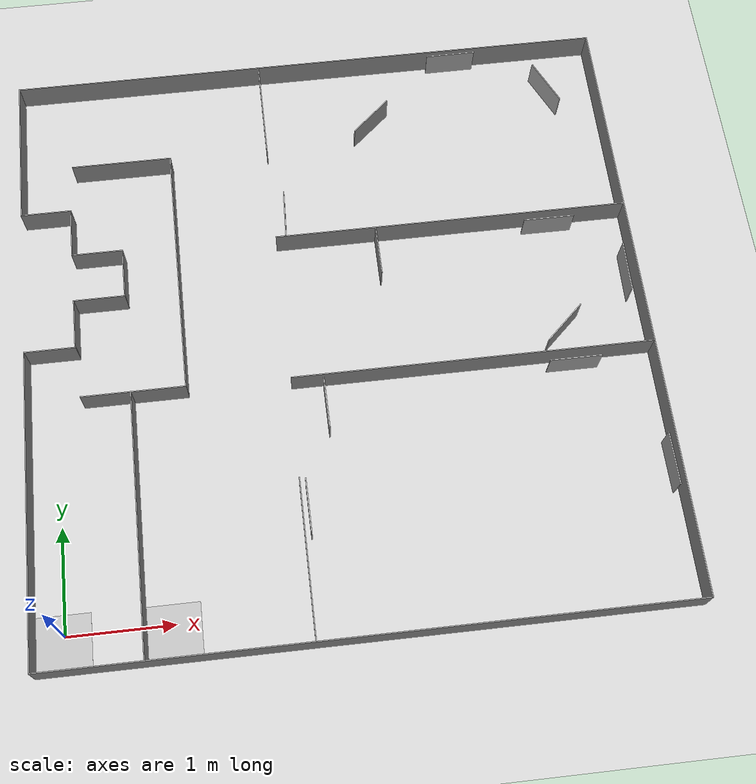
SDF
<sdf version="1.6">
 <world name="default">
  <light name="sun" type="directional">
   <pose>0 0 10 0 -0 0</pose>
   <diffuse>0.8 0.8 0.8 1</diffuse>
   <specular>0.2 0.2 0.2 1</specular>
   <attenuation>
    <range>1000</range>
    <constant>0.9</constant>
    <linear>0.01</linear>
    <quadratic>0.001</quadratic>
   </attenuation>
   <direction>-0.5 0.1 -0.9</direction>
  </light>
  <model name="ground_plane">
   <static>1</static>
   <link name="link">
    <collision name="collision">
     <geometry><plane><normal>0 0 1</normal><size>100 100</size></plane></geometry>
     <surface>
      <contact><collide_bitmask>65535</collide_bitmask></contact>
      <friction><ode><mu>100</mu><mu2>50</mu2></ode></friction>
     </surface>
    </collision>
    <visual name="visual">
     <cast_shadows>0</cast_shadows>
     <geometry><plane><normal>0 0 1</normal><size>100 100</size></plane></geometry>
     <material>
      <script><uri>file://media/materials/scripts/gazebo.material</uri><name>Gazebo/Grey</name></script>
     </material>
    </visual>
   </link>
  </model>
  <gravity>0 0 -9.8</gravity>
  <magnetic_field>6e-06 2.3e-05 -4.2e-05</magnetic_field>
  <atmosphere type="adiabatic"/>
  <physics name="default_physics" default="0" type="ode">
   <max_step_size>0.001</max_step_size>
   <real_time_factor>1</real_time_factor>
   <real_time_update_rate>1000</real_time_update_rate>
  </physics>
  <scene><ambient>0.4 0.4 0.4 1</ambient><background>0.7 0.7 0.7 1</background><shadows>1</shadows></scene>
  <audio><device>default</device></audio>
  <spherical_coordinates>
   <surface_model>EARTH_WGS84</surface_model>
   <latitude_deg>0</latitude_deg>
   <longitude_deg>0</longitude_deg>
   <elevation>0</elevation>
   <heading_deg>0</heading_deg>
  </spherical_coordinates>
  <model name="arena">
   <pose>2.72717 2.66142 0 0 -0 0</pose>
   <link name="Wall_1">
    <collision name="Wall_1_Collision">
     <geometry><box><size>6 0.01 0.3</size></box></geometry>
     <pose>0 0 0.15 0 -0 0</pose>
    </collision>
    <visual name="Wall_1_Visual">
     <pose>0 0 0.15 0 -0 0</pose>
     <geometry><box><size>6 0.01 0.3</size></box></geometry>
     <material>
      <script><uri>file://media/materials/scripts/gazebo.material</uri><name>Gazebo/Grey</name></script>
      <ambient>1 1 1 1</ambient>
     </material>
     <meta><layer>0</layer></meta>
    </visual>
    <pose>0.001988 -2.99751 0 0 -0 0</pose>
   </link>
   <link name="Wall_11">
    <collision name="Wall_11_Collision">
     <geometry><box><size>1.5 0.01 0.3</size></box></geometry>
     <pose>0 0 0.15 0 -0 0</pose>
    </collision>
    <visual name="Wall_11_Visual">
     <pose>0 0 0.15 0 -0 0</pose>
     <geometry><box><size>1.5 0.01 0.3</size></box></geometry>
     <material>
      <script><uri>file://media/materials/scripts/gazebo.material</uri><name>Gazebo/Grey</name></script>
      <ambient>1 1 1 1</ambient>
     </material>
     <meta><layer>0</layer></meta>
    </visual>
    <pose>-2.99841 2.25251 0 0 -0 1.5708</pose>
   </link>
   <link name="Wall_20">
    <collision name="Wall_20_Collision">
     <geometry><box><size>0.5 0.01 0.3</size></box></geometry>
     <pose>0 0 0.15 0 -0 0</pose>
    </collision>
    <visual name="Wall_20_Visual">
     <pose>0 0 0.15 0 -0 0</pose>
     <geometry><box><size>0.5 0.01 0.3</size></box></geometry>
     <material>
      <script><uri>file://media/materials/scripts/gazebo.material</uri><name>Gazebo/Grey</name></script>
      <ambient>1 1 1 1</ambient>
     </material>
     <meta><layer>0</layer></meta>
    </visual>
    <pose>-2.75425 1.50057 0 0 -0 0</pose>
   </link>
   <link name="Wall_22">
    <collision name="Wall_22_Collision">
     <geometry><box><size>0.5 0.01 0.3</size></box></geometry>
     <pose>0 0 0.15 0 -0 0</pose>
    </collision>
    <visual name="Wall_22_Visual">
     <pose>0 0 0.15 0 -0 0</pose>
     <geometry><box><size>0.5 0.01 0.3</size></box></geometry>
     <material>
      <script><uri>file://media/materials/scripts/gazebo.material</uri><name>Gazebo/Grey</name></script>
      <ambient>1 1 1 1</ambient>
     </material>
     <meta><layer>0</layer></meta>
    </visual>
    <pose>-2.50969 1.25495 0 0 -0 1.5708</pose>
   </link>
   <link name="Wall_24">
    <collision name="Wall_24_Collision">
     <geometry><box><size>0.5 0.01 0.3</size></box></geometry>
     <pose>0 0 0.15 0 -0 0</pose>
    </collision>
    <visual name="Wall_24_Visual">
     <pose>0 0 0.15 0 -0 0</pose>
     <geometry><box><size>0.5 0.01 0.3</size></box></geometry>
     <material>
      <script><uri>file://media/materials/scripts/gazebo.material</uri><name>Gazebo/Grey</name></script>
      <ambient>1 1 1 1</ambient>
     </material>
     <meta><layer>0</layer></meta>
    </visual>
    <pose>-2.26459 1.00122 0 0 -0 0</pose>
   </link>
   <link name="Wall_28">
    <collision name="Wall_28_Collision">
     <geometry><box><size>0.5 0.01 0.3</size></box></geometry>
     <pose>0 0 0.15 0 -0 0</pose>
    </collision>
    <visual name="Wall_28_Visual">
     <pose>0 0 0.15 0 -0 0</pose>
     <geometry><box><size>0.5 0.01 0.3</size></box></geometry>
     <material>
      <script><uri>file://media/materials/scripts/gazebo.material</uri><name>Gazebo/Grey</name></script>
      <ambient>1 1 1 1</ambient>
     </material>
     <meta><layer>0</layer></meta>
    </visual>
    <pose>-2.01503 0.755808 0 0 -0 -1.5708</pose>
   </link>
   <link name="Wall_30">
    <collision name="Wall_30_Collision">
     <geometry><box><size>0.5 0.01 0.3</size></box></geometry>
     <pose>0 0 0.15 0 -0 0</pose>
    </collision>
    <visual name="Wall_30_Visual">
     <pose>0 0 0.15 0 -0 0</pose>
     <geometry><box><size>0.5 0.01 0.3</size></box></geometry>
     <material>
      <script><uri>file://media/materials/scripts/gazebo.material</uri><name>Gazebo/Grey</name></script>
      <ambient>1 1 1 1</ambient>
     </material>
     <meta><layer>0</layer></meta>
    </visual>
    <pose>-2.25991 0.503524 0 0 -0 0</pose>
   </link>
   <link name="Wall_34">
    <collision name="Wall_34_Collision">
     <geometry><box><size>0.5 0.01 0.3</size></box></geometry>
     <pose>0 0 0.15 0 -0 0</pose>
    </collision>
    <visual name="Wall_34_Visual">
     <pose>0 0 0.15 0 -0 0</pose>
     <geometry><box><size>0.5 0.01 0.3</size></box></geometry>
     <material>
      <script><uri>file://media/materials/scripts/gazebo.material</uri><name>Gazebo/Grey</name></script>
      <ambient>1 1 1 1</ambient>
     </material>
     <meta><layer>0</layer></meta>
    </visual>
    <pose>-2.50907 0.257403 0 0 -0 -1.5708</pose>
   </link>
   <link name="Wall_36">
    <collision name="Wall_36_Collision">
     <geometry><box><size>0.5 0.01 0.3</size></box></geometry>
     <pose>0 0 0.15 0 -0 0</pose>
    </collision>
    <visual name="Wall_36_Visual">
     <pose>0 0 0.15 0 -0 0</pose>
     <geometry><box><size>0.5 0.01 0.3</size></box></geometry>
     <material>
      <script><uri>file://media/materials/scripts/gazebo.material</uri><name>Gazebo/Grey</name></script>
      <ambient>1 1 1 1</ambient>
     </material>
     <meta><layer>0</layer></meta>
    </visual>
    <pose>-2.75227 0.011599 0 0 -0 0</pose>
   </link>
   <link name="Wall_38">
    <collision name="Wall_38_Collision">
     <geometry><box><size>3.012 0.01 0.3</size></box></geometry>
     <pose>0 0 0.15 0 -0 0</pose>
    </collision>
    <visual name="Wall_38_Visual">
     <pose>0 0 0.15 0 -0 0</pose>
     <geometry><box><size>3.012 0.01 0.3</size></box></geometry>
     <material>
      <script><uri>file://media/materials/scripts/gazebo.material</uri><name>Gazebo/Grey</name></script>
      <ambient>1 1 1 1</ambient>
     </material>
     <meta><layer>0</layer></meta>
    </visual>
    <pose>-2.99601 -1.49551 0 0 -0 -1.5708</pose>
   </link>
   <link name="Wall_41">
    <collision name="Wall_41_Collision">
     <geometry><box><size>1 0.01 0.3</size></box></geometry>
     <pose>0 0 0.15 0 -0 0</pose>
    </collision>
    <visual name="Wall_41_Visual">
     <pose>0 0 0.15 0 -0 0</pose>
     <geometry><box><size>1 0.01 0.3</size></box></geometry>
     <material>
      <script><uri>file://media/materials/scripts/gazebo.material</uri><name>Gazebo/Grey</name></script>
      <ambient>1 1 1 1</ambient>
     </material>
     <meta><layer>0</layer></meta>
    </visual>
    <pose>-0.498279 2.49812 0 0 -0 1.5708</pose>
   </link>
   <link name="Wall_44">
    <collision name="Wall_44_Collision">
     <geometry><box><size>3.5 0.01 0.3</size></box></geometry>
     <pose>0 0 0.15 0 -0 0</pose>
    </collision>
    <visual name="Wall_44_Visual">
     <pose>0 0 0.15 0 -0 0</pose>
     <geometry><box><size>3.5 0.01 0.3</size></box></geometry>
     <material>
      <script><uri>file://media/materials/scripts/gazebo.material</uri><name>Gazebo/Grey</name></script>
      <ambient>1 1 1 1</ambient>
     </material>
     <meta><layer>0</layer></meta>
    </visual>
    <pose>1.25071 0.982331 0 0 -0 0</pose>
   </link>
   <link name="Wall_46">
    <collision name="Wall_46_Collision">
     <geometry><box><size>0.5 0.01 0.3</size></box></geometry>
     <pose>0 0 0.15 0 -0 0</pose>
    </collision>
    <visual name="Wall_46_Visual">
     <pose>0 0 0.15 0 -0 0</pose>
     <geometry><box><size>0.5 0.01 0.3</size></box></geometry>
     <material>
      <script><uri>file://media/materials/scripts/gazebo.material</uri><name>Gazebo/Grey</name></script>
      <ambient>1 1 1 1</ambient>
     </material>
     <meta><layer>0</layer></meta>
    </visual>
    <pose>0.496275 0.729352 0 0 -0 1.5708</pose>
   </link>
   <link name="Wall_48">
    <collision name="Wall_48_Collision">
     <geometry><box><size>3.5 0.01 0.3</size></box></geometry>
     <pose>0 0 0.15 0 -0 0</pose>
    </collision>
    <visual name="Wall_48_Visual">
     <pose>0 0 0.15 0 -0 0</pose>
     <geometry><box><size>3.5 0.01 0.3</size></box></geometry>
     <material>
      <script><uri>file://media/materials/scripts/gazebo.material</uri><name>Gazebo/Grey</name></script>
      <ambient>1 1 1 1</ambient>
     </material>
     <meta><layer>0</layer></meta>
    </visual>
    <pose>1.25425 -0.520404 0 0 -0 0</pose>
   </link>
   <link name="Wall_50">
    <collision name="Wall_50_Collision">
     <geometry><box><size>1.5 0.01 0.3</size></box></geometry>
     <pose>0 0 0.15 0 -0 0</pose>
    </collision>
    <visual name="Wall_50_Visual">
     <pose>0 0 0.15 0 -0 0</pose>
     <geometry><box><size>1.5 0.01 0.3</size></box></geometry>
     <material>
      <script><uri>file://media/materials/scripts/gazebo.material</uri><name>Gazebo/Grey</name></script>
      <ambient>1 1 1 1</ambient>
     </material>
     <meta><layer>0</layer></meta>
    </visual>
    <pose>-0.512233 -2.25115 0 0 -0 -1.5708</pose>
   </link>
   <link name="Wall_52">
    <collision name="Wall_52_Collision">
     <geometry><box><size>2.5 0.01 0.3</size></box></geometry>
     <pose>0 0 0.15 0 -0 0</pose>
    </collision>
    <visual name="Wall_52_Visual">
     <pose>0 0 0.15 0 -0 0</pose>
     <geometry><box><size>2.5 0.01 0.3</size></box></geometry>
     <material>
      <script><uri>file://media/materials/scripts/gazebo.material</uri><name>Gazebo/Grey</name></script>
      <ambient>1 1 1 1</ambient>
     </material>
     <meta><layer>0</layer></meta>
    </visual>
    <pose>-2.00505 -1.74423 0 0 -0 -1.5708</pose>
   </link>
   <link name="Wall_54">
    <collision name="Wall_54_Collision">
     <geometry><box><size>1 0.01 0.3</size></box></geometry>
     <pose>0 0 0.15 0 -0 0</pose>
    </collision>
    <visual name="Wall_54_Visual">
     <pose>0 0 0.15 0 -0 0</pose>
     <geometry><box><size>1 0.01 0.3</size></box></geometry>
     <material>
      <script><uri>file://media/materials/scripts/gazebo.material</uri><name>Gazebo/Grey</name></script>
      <ambient>1 1 1 1</ambient>
     </material>
     <meta><layer>0</layer></meta>
    </visual>
    <pose>-1.98078 -0.499121 0 0 -0 0</pose>
   </link>
   <link name="Wall_56">
    <collision name="Wall_56_Collision">
     <geometry><box><size>2.5 0.01 0.3</size></box></geometry>
     <pose>0 0 0.15 0 -0 0</pose>
    </collision>
    <visual name="Wall_56_Visual">
     <pose>0 0 0.15 0 -0 0</pose>
     <geometry><box><size>2.5 0.01 0.3</size></box></geometry>
     <material>
      <script><uri>file://media/materials/scripts/gazebo.material</uri><name>Gazebo/Grey</name></script>
      <ambient>1 1 1 1</ambient>
     </material>
     <meta><layer>0</layer></meta>
    </visual>
    <pose>-1.48616 0.751059 0 0 -0 -1.5708</pose>
   </link>
   <link name="Wall_58">
    <collision name="Wall_58_Collision">
     <geometry><box><size>1 0.01 0.3</size></box></geometry>
     <pose>0 0 0.15 0 -0 0</pose>
    </collision>
    <visual name="Wall_58_Visual">
     <pose>0 0 0.15 0 -0 0</pose>
     <geometry><box><size>1 0.01 0.3</size></box></geometry>
     <material>
      <script><uri>file://media/materials/scripts/gazebo.material</uri><name>Gazebo/Grey</name></script>
      <ambient>1 1 1 1</ambient>
     </material>
     <meta><layer>0</layer></meta>
    </visual>
    <pose>-1.9786 2.00012 0 0 -0 0</pose>
   </link>
   <link name="Wall_6">
    <collision name="Wall_6_Collision">
     <geometry><box><size>6 0.01 0.3</size></box></geometry>
     <pose>0 0 0.15 0 -0 0</pose>
    </collision>
    <visual name="Wall_6_Visual">
     <pose>0 0 0.15 0 -0 0</pose>
     <geometry><box><size>6 0.01 0.3</size></box></geometry>
     <material>
      <script><uri>file://media/materials/scripts/gazebo.material</uri><name>Gazebo/Grey</name></script>
      <ambient>1 1 1 1</ambient>
     </material>
     <meta><layer>0</layer></meta>
    </visual>
    <pose>2.99837 -0.000334 0 0 -0 -1.5708</pose>
   </link>
   <link name="Wall_8">
    <collision name="Wall_8_Collision">
     <geometry><box><size>6 0.01 0.3</size></box></geometry>
     <pose>0 0 0.15 0 -0 0</pose>
    </collision>
    <visual name="Wall_8_Visual">
     <pose>0 0 0.15 0 -0 0</pose>
     <geometry><box><size>6 0.01 0.3</size></box></geometry>
     <material>
      <script><uri>file://media/materials/scripts/gazebo.material</uri><name>Gazebo/Grey</name></script>
      <ambient>1 1 1 1</ambient>
     </material>
     <meta><layer>0</layer></meta>
    </visual>
    <pose>-0.003034 2.99691 0 0 -0 0</pose>
   </link>
   <static>1</static>
  </model>
  <model name="start_plane">
   <static>1</static>
   <link name="link">
    <collision name="collision">
     <geometry><plane><normal>0 0 1</normal><size>0.5 0.5</size></plane></geometry>
     <surface><friction><ode><mu>100</mu><mu2>50</mu2></ode></friction></surface>
    </collision>
    <visual name="visual">
     <cast_shadows>0</cast_shadows>
     <geometry><plane><normal>0 0 1</normal><size>0.5 0.5</size></plane></geometry>
     <material>
      <script>
       <uri>model://start_plane/materials/scripts</uri>
       <uri>model://start_plane/materials/textures/</uri>
       <name>StartPlane/Image</name>
      </script>
     </material>
    </visual>
   </link>
   <pose>-0.014663 -0.051968 0 0 -0 0</pose>
  </model>
  <model name="end_plane">
   <static>1</static>
   <link name="link">
    <collision name="collision">
     <geometry><plane><normal>0 0 1</normal><size>0.5 0.5</size></plane></geometry>
     <surface><friction><ode><mu>100</mu><mu2>50</mu2></ode></friction></surface>
    </collision>
    <visual name="visual">
     <cast_shadows>0</cast_shadows>
     <geometry><plane><normal>0 0 1</normal><size>0.5 0.5</size></plane></geometry>
     <material>
      <script>
       <uri>model://end_plane/materials/scripts</uri>
       <uri>model://end_plane/materials/textures/</uri>
       <name>EndPlane/Image</name>
      </script>
     </material>
    </visual>
   </link>
   <pose>0.968541 -0.061057 0 0 -0 0</pose>
  </model>
  <model name="panel_bed">
   <link name="link_0">
    <inertial>
     <mass>1</mass>
     <inertia>
      <ixx>0.166667</ixx>
      <ixy>0</ixy>
      <ixz>0</ixz>
      <iyy>0.166667</iyy>
      <iyz>0</iyz>
      <izz>0.166667</izz>
     </inertia>
    </inertial>
    <visual name="visual">
     <geometry><box><size>0.5 0.01 0.3</size></box></geometry>
     <material>
      <script>
       <uri>model://panel_bed/materials/scripts</uri>
       <uri>model://panel_bed/materials/textures/</uri>
       <name>Targets/bed</name>
      </script>
     </material>
    </visual>
    <collision name="collision">
     <geometry><box><size>0.5 0.01 0.3</size></box></geometry>
     <surface>
      <friction>
       <ode><mu>1</mu><mu2>1</mu2><fdir1>0 0 0</fdir1><slip1>0</slip1><slip2>0</slip2></ode>
       <torsional>
        <coefficient>1</coefficient>
        <patch_radius>0</patch_radius>
        <surface_radius>0</surface_radius>
        <use_patch_radius>1</use_patch_radius>
        <ode><slip>0</slip></ode>
       </torsional>
      </friction>
      <bounce><restitution_coefficient>0</restitution_coefficient><threshold>1e+06</threshold></bounce>
      <contact>
       <collide_without_contact>0</collide_without_contact>
       <collide_without_contact_bitmask>1</collide_without_contact_bitmask>
       <collide_bitmask>1</collide_bitmask>
       <ode>
        <soft_cfm>0</soft_cfm>
        <soft_erp>0.2</soft_erp>
        <kp>1e+13</kp>
        <kd>1</kd>
        <max_vel>0.01</max_vel>
        <min_depth>0</min_depth>
       </ode>
       <bullet>
        <split_impulse>1</split_impulse>
        <split_impulse_penetration_threshold>-0.01</split_impulse_penetration_threshold>
        <soft_cfm>0</soft_cfm>
        <soft_erp>0.2</soft_erp>
        <kp>1e+13</kp>
        <kd>1</kd>
       </bullet>
      </contact>
     </surface>
    </collision>
   </link>
   <static>0</static>
   <pose>5.66442 0.961953 0.149997 -1e-06 0 -1.56328</pose>
  </model>
  <model name="panel_person">
   <link name="link_0">
    <inertial>
     <mass>1</mass>
     <inertia>
      <ixx>0.166667</ixx>
      <ixy>0</ixy>
      <ixz>0</ixz>
      <iyy>0.166667</iyy>
      <iyz>0</iyz>
      <izz>0.166667</izz>
     </inertia>
    </inertial>
    <visual name="visual">
     <geometry><box><size>0.5 0.01 0.3</size></box></geometry>
     <material>
      <script>
       <uri>model://panel_person/materials/scripts</uri>
       <uri>model://panel_person/materials/textures/</uri>
       <name>Targets/person</name>
      </script>
     </material>
    </visual>
    <collision name="collision">
     <geometry><box><size>0.5 0.01 0.3</size></box></geometry>
     <surface>
      <friction>
       <ode><mu>1</mu><mu2>1</mu2><fdir1>0 0 0</fdir1><slip1>0</slip1><slip2>0</slip2></ode>
       <torsional>
        <coefficient>1</coefficient>
        <patch_radius>0</patch_radius>
        <surface_radius>0</surface_radius>
        <use_patch_radius>1</use_patch_radius>
        <ode><slip>0</slip></ode>
       </torsional>
      </friction>
      <bounce><restitution_coefficient>0</restitution_coefficient><threshold>1e+06</threshold></bounce>
      <contact>
       <collide_without_contact>0</collide_without_contact>
       <collide_without_contact_bitmask>1</collide_without_contact_bitmask>
       <collide_bitmask>1</collide_bitmask>
       <ode>
        <soft_cfm>0</soft_cfm>
        <soft_erp>0.2</soft_erp>
        <kp>1e+13</kp>
        <kd>1</kd>
        <max_vel>0.01</max_vel>
        <min_depth>0</min_depth>
       </ode>
       <bullet>
        <split_impulse>1</split_impulse>
        <split_impulse_penetration_threshold>-0.01</split_impulse_penetration_threshold>
        <soft_cfm>0</soft_cfm>
        <soft_erp>0.2</soft_erp>
        <kp>1e+13</kp>
        <kd>1</kd>
       </bullet>
      </contact>
     </surface>
    </collision>
   </link>
   <static>0</static>
   <pose>4.94792 2.04346 0.149993 1e-06 -0 -0.002578</pose>
  </model>
  <model name="panel_sofa">
   <link name="link_0">
    <inertial>
     <mass>1</mass>
     <inertia>
      <ixx>0.166667</ixx>
      <ixy>0</ixy>
      <ixz>0</ixz>
      <iyy>0.166667</iyy>
      <iyz>0</iyz>
      <izz>0.166667</izz>
     </inertia>
    </inertial>
    <visual name="visual">
     <geometry><box><size>0.5 0.01 0.3</size></box></geometry>
     <material>
      <script>
       <uri>model://panel_sofa/materials/scripts</uri>
       <uri>model://panel_sofa/materials/textures/</uri>
       <name>Targets/sofa</name>
      </script>
     </material>
    </visual>
    <collision name="collision">
     <geometry><box><size>0.5 0.01 0.3</size></box></geometry>
     <surface>
      <friction>
       <ode><mu>1</mu><mu2>1</mu2><fdir1>0 0 0</fdir1><slip1>0</slip1><slip2>0</slip2></ode>
       <torsional>
        <coefficient>1</coefficient>
        <patch_radius>0</patch_radius>
        <surface_radius>0</surface_radius>
        <use_patch_radius>1</use_patch_radius>
        <ode><slip>0</slip></ode>
       </torsional>
      </friction>
      <bounce><restitution_coefficient>0</restitution_coefficient><threshold>1e+06</threshold></bounce>
      <contact>
       <collide_without_contact>0</collide_without_contact>
       <collide_without_contact_bitmask>1</collide_without_contact_bitmask>
       <collide_bitmask>1</collide_bitmask>
       <ode>
        <soft_cfm>0</soft_cfm>
        <soft_erp>0.2</soft_erp>
        <kp>1e+13</kp>
        <kd>1</kd>
        <max_vel>0.01</max_vel>
        <min_depth>0</min_depth>
       </ode>
       <bullet>
        <split_impulse>1</split_impulse>
        <split_impulse_penetration_threshold>-0.01</split_impulse_penetration_threshold>
        <soft_cfm>0</soft_cfm>
        <soft_erp>0.2</soft_erp>
        <kp>1e+13</kp>
        <kd>1</kd>
       </bullet>
      </contact>
     </surface>
    </collision>
   </link>
   <static>0</static>
   <pose>5.20267 5.15732 0.149997 -2e-06 0 -1.1306</pose>
  </model>
  <model name="panel_tv">
   <link name="link_0">
    <inertial>
     <mass>1</mass>
     <inertia>
      <ixx>0.166667</ixx>
      <ixy>0</ixy>
      <ixz>0</ixz>
      <iyy>0.166667</iyy>
      <iyz>0</iyz>
      <izz>0.166667</izz>
     </inertia>
    </inertial>
    <visual name="visual">
     <geometry><box><size>0.5 0.01 0.3</size></box></geometry>
     <material>
      <script>
       <uri>model://panel_tv/materials/scripts</uri>
       <uri>model://panel_tv/materials/textures/</uri>
       <name>Targets/tv</name>
      </script>
     </material>
    </visual>
    <collision name="collision">
     <geometry><box><size>0.5 0.01 0.3</size></box></geometry>
     <surface>
      <friction>
       <ode><mu>1</mu><mu2>1</mu2><fdir1>0 0 0</fdir1><slip1>0</slip1><slip2>0</slip2></ode>
       <torsional>
        <coefficient>1</coefficient>
        <patch_radius>0</patch_radius>
        <surface_radius>0</surface_radius>
        <use_patch_radius>1</use_patch_radius>
        <ode><slip>0</slip></ode>
       </torsional>
      </friction>
      <bounce><restitution_coefficient>0</restitution_coefficient><threshold>1e+06</threshold></bounce>
      <contact>
       <collide_without_contact>0</collide_without_contact>
       <collide_without_contact_bitmask>1</collide_without_contact_bitmask>
       <collide_bitmask>1</collide_bitmask>
       <ode>
        <soft_cfm>0</soft_cfm>
        <soft_erp>0.2</soft_erp>
        <kp>1e+13</kp>
        <kd>1</kd>
        <max_vel>0.01</max_vel>
        <min_depth>0</min_depth>
       </ode>
       <bullet>
        <split_impulse>1</split_impulse>
        <split_impulse_penetration_threshold>-0.01</split_impulse_penetration_threshold>
        <soft_cfm>0</soft_cfm>
        <soft_erp>0.2</soft_erp>
        <kp>1e+13</kp>
        <kd>1</kd>
       </bullet>
      </contact>
     </surface>
    </collision>
   </link>
   <static>0</static>
   <pose>4.25817 5.60699 0.149997 -0 -0 -3.13718</pose>
  </model>
  <model name="panel_pet_0">
   <link name="link_0">
    <inertial>
     <mass>1</mass>
     <inertia>
      <ixx>0.166667</ixx>
      <ixy>0</ixy>
      <ixz>0</ixz>
      <iyy>0.166667</iyy>
      <iyz>0</iyz>
      <izz>0.166667</izz>
     </inertia>
    </inertial>
    <visual name="visual">
     <geometry><box><size>0.5 0.01 0.3</size></box></geometry>
     <material>
      <script>
       <uri>model://panel_pet/materials/scripts</uri>
       <uri>model://panel_pet/materials/textures/</uri>
       <name>Targets/pet</name>
      </script>
     </material>
    </visual>
    <collision name="collision">
     <geometry><box><size>0.5 0.01 0.3</size></box></geometry>
     <surface>
      <friction>
       <ode><mu>1</mu><mu2>1</mu2><fdir1>0 0 0</fdir1><slip1>0</slip1><slip2>0</slip2></ode>
       <torsional>
        <coefficient>1</coefficient>
        <patch_radius>0</patch_radius>
        <surface_radius>0</surface_radius>
        <use_patch_radius>1</use_patch_radius>
        <ode><slip>0</slip></ode>
       </torsional>
      </friction>
      <bounce><restitution_coefficient>0</restitution_coefficient><threshold>1e+06</threshold></bounce>
      <contact>
       <collide_without_contact>0</collide_without_contact>
       <collide_without_contact_bitmask>1</collide_without_contact_bitmask>
       <collide_bitmask>1</collide_bitmask>
       <ode>
        <soft_cfm>0</soft_cfm>
        <soft_erp>0.2</soft_erp>
        <kp>1e+13</kp>
        <kd>1</kd>
        <max_vel>0.01</max_vel>
        <min_depth>0</min_depth>
       </ode>
       <bullet>
        <split_impulse>1</split_impulse>
        <split_impulse_penetration_threshold>-0.01</split_impulse_penetration_threshold>
        <soft_cfm>0</soft_cfm>
        <soft_erp>0.2</soft_erp>
        <kp>1e+13</kp>
        <kd>1</kd>
       </bullet>
      </contact>
     </surface>
    </collision>
   </link>
   <static>0</static>
   <pose>3.33228 4.9415 0.149995 -1e-06 -0 0.720699</pose>
  </model>
  <model name="panel_food">
   <link name="link_0">
    <inertial>
     <mass>1</mass>
     <inertia>
      <ixx>0.166667</ixx>
      <ixy>0</ixy>
      <ixz>0</ixz>
      <iyy>0.166667</iyy>
      <iyz>0</iyz>
      <izz>0.166667</izz>
     </inertia>
    </inertial>
    <visual name="visual">
     <geometry><box><size>0.5 0.01 0.3</size></box></geometry>
     <material>
      <script>
       <uri>model://panel_food/materials/scripts</uri>
       <uri>model://panel_food/materials/textures/</uri>
       <name>Targets/food</name>
      </script>
     </material>
    </visual>
    <collision name="collision">
     <geometry><box><size>0.5 0.01 0.3</size></box></geometry>
     <surface>
      <friction>
       <ode><mu>1</mu><mu2>1</mu2><fdir1>0 0 0</fdir1><slip1>0</slip1><slip2>0</slip2></ode>
       <torsional>
        <coefficient>1</coefficient>
        <patch_radius>0</patch_radius>
        <surface_radius>0</surface_radius>
        <use_patch_radius>1</use_patch_radius>
        <ode><slip>0</slip></ode>
       </torsional>
      </friction>
      <bounce><restitution_coefficient>0</restitution_coefficient><threshold>1e+06</threshold></bounce>
      <contact>
       <collide_without_contact>0</collide_without_contact>
       <collide_without_contact_bitmask>1</collide_without_contact_bitmask>
       <collide_bitmask>1</collide_bitmask>
       <ode>
        <soft_cfm>0</soft_cfm>
        <soft_erp>0.2</soft_erp>
        <kp>1e+13</kp>
        <kd>1</kd>
        <max_vel>0.01</max_vel>
        <min_depth>0</min_depth>
       </ode>
       <bullet>
        <split_impulse>1</split_impulse>
        <split_impulse_penetration_threshold>-0.01</split_impulse_penetration_threshold>
        <soft_cfm>0</soft_cfm>
        <soft_erp>0.2</soft_erp>
        <kp>1e+13</kp>
        <kd>1</kd>
       </bullet>
      </contact>
     </surface>
    </collision>
   </link>
   <static>0</static>
   <pose>5.62458 2.94725 0.149993 -1e-06 0 -1.58936</pose>
  </model>
  <model name="panel_tableware">
   <link name="link_0">
    <inertial>
     <mass>1</mass>
     <inertia>
      <ixx>0.166667</ixx>
      <ixy>0</ixy>
      <ixz>0</ixz>
      <iyy>0.166667</iyy>
      <iyz>0</iyz>
      <izz>0.166667</izz>
     </inertia>
    </inertial>
    <visual name="visual">
     <geometry><box><size>0.5 0.01 0.3</size></box></geometry>
     <material>
      <script>
       <uri>model://panel_tableware/materials/scripts</uri>
       <uri>model://panel_tableware/materials/textures/</uri>
       <name>Targets/tableware</name>
      </script>
     </material>
    </visual>
    <collision name="collision">
     <geometry><box><size>0.5 0.01 0.3</size></box></geometry>
     <surface>
      <friction>
       <ode><mu>1</mu><mu2>1</mu2><fdir1>0 0 0</fdir1><slip1>0</slip1><slip2>0</slip2></ode>
       <torsional>
        <coefficient>1</coefficient>
        <patch_radius>0</patch_radius>
        <surface_radius>0</surface_radius>
        <use_patch_radius>1</use_patch_radius>
        <ode><slip>0</slip></ode>
       </torsional>
      </friction>
      <bounce><restitution_coefficient>0</restitution_coefficient><threshold>1e+06</threshold></bounce>
      <contact>
       <collide_without_contact>0</collide_without_contact>
       <collide_without_contact_bitmask>1</collide_without_contact_bitmask>
       <collide_bitmask>1</collide_bitmask>
       <ode>
        <soft_cfm>0</soft_cfm>
        <soft_erp>0.2</soft_erp>
        <kp>1e+13</kp>
        <kd>1</kd>
        <max_vel>0.01</max_vel>
        <min_depth>0</min_depth>
       </ode>
       <bullet>
        <split_impulse>1</split_impulse>
        <split_impulse_penetration_threshold>-0.01</split_impulse_penetration_threshold>
        <soft_cfm>0</soft_cfm>
        <soft_erp>0.2</soft_erp>
        <kp>1e+13</kp>
        <kd>1</kd>
       </bullet>
      </contact>
     </surface>
    </collision>
   </link>
   <static>0</static>
   <pose>4.95335 3.55984 0.149998 0 -0 -0.003568</pose>
  </model>
  <model name="panel_person_0">
   <link name="link_0">
    <inertial>
     <mass>1</mass>
     <inertia>
      <ixx>0.166667</ixx>
      <ixy>0</ixy>
      <ixz>0</ixz>
      <iyy>0.166667</iyy>
      <iyz>0</iyz>
      <izz>0.166667</izz>
     </inertia>
    </inertial>
    <visual name="visual">
     <geometry><box><size>0.5 0.01 0.3</size></box></geometry>
     <material>
      <script>
       <uri>model://panel_person/materials/scripts</uri>
       <uri>model://panel_person/materials/textures/</uri>
       <name>Targets/person</name>
      </script>
     </material>
    </visual>
    <collision name="collision">
     <geometry><box><size>0.5 0.01 0.3</size></box></geometry>
     <surface>
      <friction>
       <ode><mu>1</mu><mu2>1</mu2><fdir1>0 0 0</fdir1><slip1>0</slip1><slip2>0</slip2></ode>
       <torsional>
        <coefficient>1</coefficient>
        <patch_radius>0</patch_radius>
        <surface_radius>0</surface_radius>
        <use_patch_radius>1</use_patch_radius>
        <ode><slip>0</slip></ode>
       </torsional>
      </friction>
      <bounce><restitution_coefficient>0</restitution_coefficient><threshold>1e+06</threshold></bounce>
      <contact>
       <collide_without_contact>0</collide_without_contact>
       <collide_without_contact_bitmask>1</collide_without_contact_bitmask>
       <collide_bitmask>1</collide_bitmask>
       <ode>
        <soft_cfm>0</soft_cfm>
        <soft_erp>0.2</soft_erp>
        <kp>1e+13</kp>
        <kd>1</kd>
        <max_vel>0.01</max_vel>
        <min_depth>0</min_depth>
       </ode>
       <bullet>
        <split_impulse>1</split_impulse>
        <split_impulse_penetration_threshold>-0.01</split_impulse_penetration_threshold>
        <soft_cfm>0</soft_cfm>
        <soft_erp>0.2</soft_erp>
        <kp>1e+13</kp>
        <kd>1</kd>
       </bullet>
      </contact>
     </surface>
    </collision>
   </link>
   <static>0</static>
   <pose>4.90837 2.42377 0.149995 1e-06 -0 -2.39992</pose>
  </model>
  <model name="panel_blank">
   <link name="link_0">
    <inertial>
     <mass>1</mass>
     <inertia>
      <ixx>0.166667</ixx>
      <ixy>0</ixy>
      <ixz>0</ixz>
      <iyy>0.166667</iyy>
      <iyz>0</iyz>
      <izz>0.166667</izz>
     </inertia>
    </inertial>
    <visual name="visual">
     <geometry><box><size>0.5 0.01 0.3</size></box></geometry>
     <material>
      <script>
       <uri>model://panel_blank/materials/scripts</uri>
       <uri>model://panel_blank/materials/textures/</uri>
       <name>Targets/blank</name>
      </script>
     </material>
    </visual>
    <collision name="collision">
     <geometry><box><size>0.5 0.01 0.3</size></box></geometry>
     <surface>
      <friction>
       <ode><mu>1</mu><mu2>1</mu2><fdir1>0 0 0</fdir1><slip1>0</slip1><slip2>0</slip2></ode>
       <torsional>
        <coefficient>1</coefficient>
        <patch_radius>0</patch_radius>
        <surface_radius>0</surface_radius>
        <use_patch_radius>1</use_patch_radius>
        <ode><slip>0</slip></ode>
       </torsional>
      </friction>
      <bounce><restitution_coefficient>0</restitution_coefficient><threshold>1e+06</threshold></bounce>
      <contact>
       <collide_without_contact>0</collide_without_contact>
       <collide_without_contact_bitmask>1</collide_without_contact_bitmask>
       <collide_bitmask>1</collide_bitmask>
       <ode>
        <soft_cfm>0</soft_cfm>
        <soft_erp>0.2</soft_erp>
        <kp>1e+13</kp>
        <kd>1</kd>
        <max_vel>0.01</max_vel>
        <min_depth>0</min_depth>
       </ode>
       <bullet>
        <split_impulse>1</split_impulse>
        <split_impulse_penetration_threshold>-0.01</split_impulse_penetration_threshold>
        <soft_cfm>0</soft_cfm>
        <soft_erp>0.2</soft_erp>
        <kp>1e+13</kp>
        <kd>1</kd>
       </bullet>
      </contact>
     </surface>
    </collision>
   </link>
   <static>0</static>
   <pose>2.54376 1.85836 0.149997 -0 -0 -1.56407</pose>
  </model>
  <model name="panel_blank_0">
   <link name="link_0">
    <inertial>
     <mass>1</mass>
     <inertia>
      <ixx>0.166667</ixx>
      <ixy>0</ixy>
      <ixz>0</ixz>
      <iyy>0.166667</iyy>
      <iyz>0</iyz>
      <izz>0.166667</izz>
     </inertia>
    </inertial>
    <visual name="visual">
     <geometry><box><size>0.5 0.01 0.3</size></box></geometry>
     <material>
      <script>
       <uri>model://panel_blank/materials/scripts</uri>
       <uri>model://panel_blank/materials/textures/</uri>
       <name>Targets/blank</name>
      </script>
     </material>
    </visual>
    <collision name="collision">
     <geometry><box><size>0.5 0.01 0.3</size></box></geometry>
     <surface>
      <friction>
       <ode><mu>1</mu><mu2>1</mu2><fdir1>0 0 0</fdir1><slip1>0</slip1><slip2>0</slip2></ode>
       <torsional>
        <coefficient>1</coefficient>
        <patch_radius>0</patch_radius>
        <surface_radius>0</surface_radius>
        <use_patch_radius>1</use_patch_radius>
        <ode><slip>0</slip></ode>
       </torsional>
      </friction>
      <bounce><restitution_coefficient>0</restitution_coefficient><threshold>1e+06</threshold></bounce>
      <contact>
       <collide_without_contact>0</collide_without_contact>
       <collide_without_contact_bitmask>1</collide_without_contact_bitmask>
       <collide_bitmask>1</collide_bitmask>
       <ode>
        <soft_cfm>0</soft_cfm>
        <soft_erp>0.2</soft_erp>
        <kp>1e+13</kp>
        <kd>1</kd>
        <max_vel>0.01</max_vel>
        <min_depth>0</min_depth>
       </ode>
       <bullet>
        <split_impulse>1</split_impulse>
        <split_impulse_penetration_threshold>-0.01</split_impulse_penetration_threshold>
        <soft_cfm>0</soft_cfm>
        <soft_erp>0.2</soft_erp>
        <kp>1e+13</kp>
        <kd>1</kd>
       </bullet>
      </contact>
     </surface>
    </collision>
   </link>
   <static>0</static>
   <pose>2.34045 3.90287 0.149991 -2e-06 -0 1.52624</pose>
  </model>
  <model name="panel_blank_clone">
   <link name="link_0">
    <inertial>
     <mass>1</mass>
     <inertia>
      <ixx>0.166667</ixx>
      <ixy>0</ixy>
      <ixz>0</ixz>
      <iyy>0.166667</iyy>
      <iyz>0</iyz>
      <izz>0.166667</izz>
     </inertia>
    </inertial>
    <visual name="visual">
     <geometry><box><size>0.5 0.01 0.3</size></box></geometry>
     <material>
      <script>
       <uri>model://panel_blank/materials/scripts</uri>
       <uri>model://panel_blank/materials/textures/</uri>
       <name>Targets/blank</name>
      </script>
     </material>
    </visual>
    <collision name="collision">
     <geometry><box><size>0.5 0.01 0.3</size></box></geometry>
     <surface>
      <friction>
       <ode><mu>1</mu><mu2>1</mu2><fdir1>0 0 0</fdir1><slip1>0</slip1><slip2>0</slip2></ode>
       <torsional>
        <coefficient>1</coefficient>
        <patch_radius>0</patch_radius>
        <surface_radius>0</surface_radius>
        <use_patch_radius>1</use_patch_radius>
        <ode><slip>0</slip></ode>
       </torsional>
      </friction>
      <bounce><restitution_coefficient>0</restitution_coefficient><threshold>1e+06</threshold></bounce>
      <contact>
       <collide_without_contact>0</collide_without_contact>
       <collide_without_contact_bitmask>1</collide_without_contact_bitmask>
       <collide_bitmask>1</collide_bitmask>
       <ode>
        <soft_cfm>0</soft_cfm>
        <soft_erp>0.2</soft_erp>
        <kp>1e+13</kp>
        <kd>1</kd>
        <max_vel>0.01</max_vel>
        <min_depth>0</min_depth>
       </ode>
       <bullet>
        <split_impulse>1</split_impulse>
        <split_impulse_penetration_threshold>-0.01</split_impulse_penetration_threshold>
        <soft_cfm>0</soft_cfm>
        <soft_erp>0.2</soft_erp>
        <kp>1e+13</kp>
        <kd>1</kd>
       </bullet>
      </contact>
     </surface>
    </collision>
   </link>
   <static>0</static>
   <pose>2.27378 0.894375 0.149993 1e-06 -0 -1.56407</pose>
  </model>
 </world>
</sdf>
